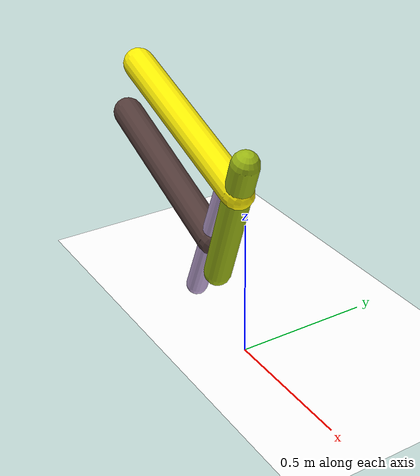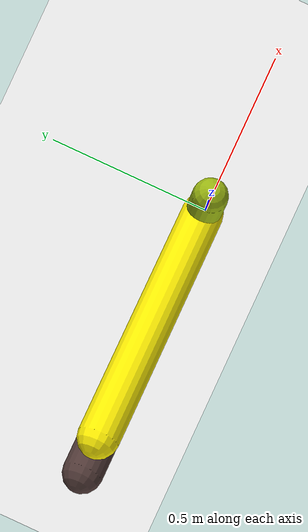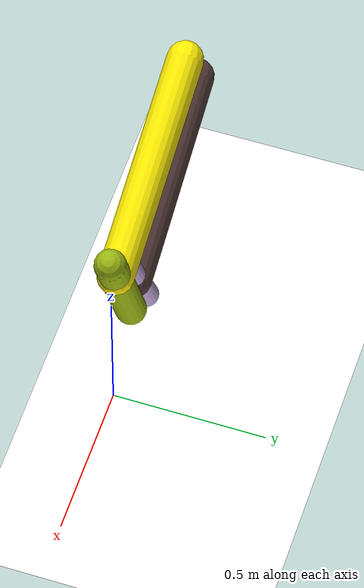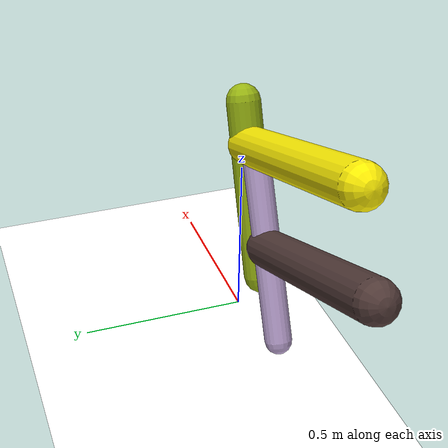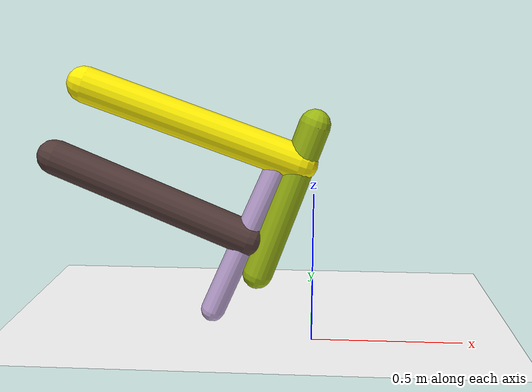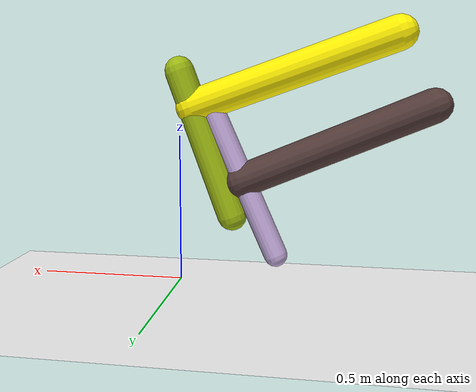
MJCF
<mujoco model="morphology">
  <option timestep="0.01"/>
  <default>
    <default class="/"/>
  </default>
  <asset>
    <texture name="texplane" type="2d" builtin="checker" rgb1="0.1 0.2 0.3" rgb2="0.2 0.3 0.4" width="300" height="300"/>
    <material name="MatPlane" class="/" texture="texplane" texrepeat="20 20" specular="1" shininess="1" reflectance="0.5"/>
  </asset>
  <worldbody>
    <light name="//unnamed_light_0" class="/" directional="true" pos="0 0 1.5" dir="0 0 -1.3" cutoff="1e+02" exponent="1" diffuse="1 1 1" specular="0.1 0.1 0.1"/>
    <geom name="ground" class="/" type="plane" size="15 15 0.5" material="MatPlane" rgba="1 1 1 1"/>
    <body name="body" pos="0 0 0.72">
      <geom name="geom0" class="/" type="capsule" contype="1" conaffinity="1" condim="3" size="0.05" rgba="0.61 0.72 0.074 1" friction="0.4 0.1 0.1" fromto="0 0 0 -0.18 0 -0.49"/>
      <body name="body1" pos="-0.045 0 -0.12">
        <geom name="geom1" class="/" type="capsule" contype="1" conaffinity="1" condim="3" size="0.058" rgba="1 0.94 0.0082 1" friction="0.4 0.1 0.1" fromto="0 0 0 -0.67 0 0.24"/>
        <body name="body2" pos="-0.055 0 0.02">
          <geom name="geom2" class="/" type="capsule" contype="1" conaffinity="1" condim="3" size="0.04" rgba="0.76 0.66 0.85 1" friction="0.4 0.1 0.1" fromto="0 0 0 -0.23 0 -0.52"/>
          <body name="body3" pos="-0.11 0 -0.27">
            <geom name="geom3" class="/" type="capsule" contype="1" conaffinity="1" condim="3" size="0.057" rgba="0.32 0.23 0.22 1" friction="0.4 0.1 0.1" fromto="0 0 0 -0.62 0 0.26"/>
            <joint name="joint3" class="/" type="hinge" axis="0 1 0" limited="true" stiffness="20" range="-68 68" armature="0.1" damping="2"/>
          </body>
          <joint name="joint2" class="/" type="hinge" axis="0 1 0" limited="true" stiffness="20" range="-54 54" armature="0.1" damping="2"/>
        </body>
        <joint name="joint1" class="/" type="hinge" axis="0 1 0" limited="true" stiffness="20" range="-45 45" armature="0.1" damping="2"/>
      </body>
      <joint name="rootx" class="/" type="slide" axis="1 0 0" limited="false" stiffness="0" armature="0" damping="0"/>
      <joint name="rootz" class="/" type="slide" axis="0 0 1" limited="false" stiffness="0" armature="0" damping="0"/>
      <joint name="rooty" class="/" type="hinge" axis="0 1 0" limited="false" stiffness="0" armature="0" damping="0"/>
    </body>
  </worldbody>
  <actuator>
    <motor name="motor3" class="/" ctrllimited="true" ctrlrange="-1 1" gear="1.6e+02" joint="joint3"/>
    <motor name="motor2" class="/" ctrllimited="true" ctrlrange="-1 1" gear="1.8e+02" joint="joint2"/>
    <motor name="motor1" class="/" ctrllimited="true" ctrlrange="-1 1" gear="1.4e+02" joint="joint1"/>
  </actuator>
  <sensor>
    <subtreelinvel name="velocity" body="body"/>
  </sensor>
</mujoco>
